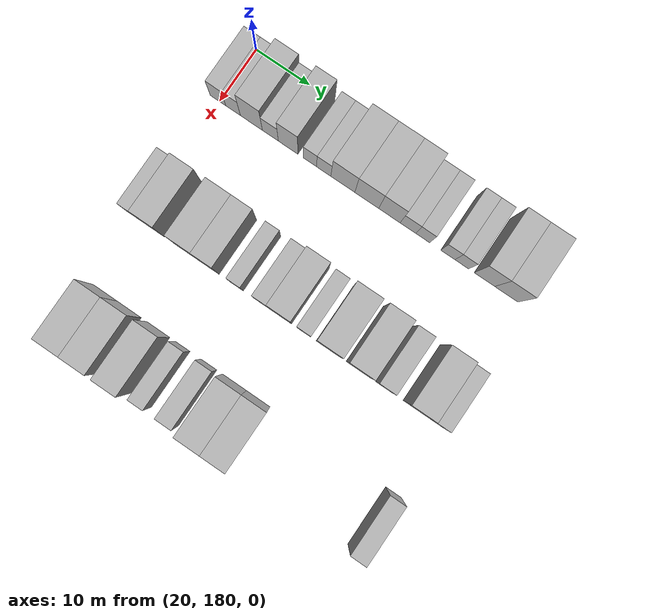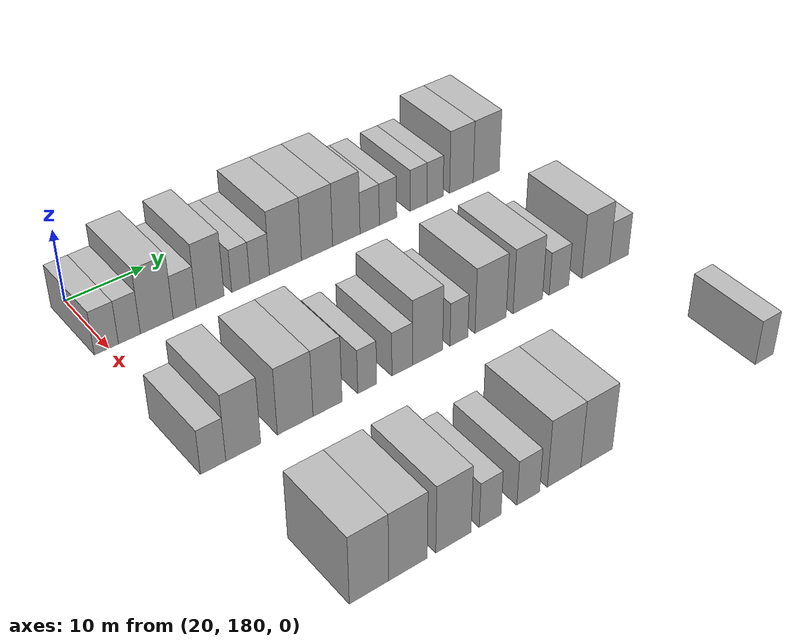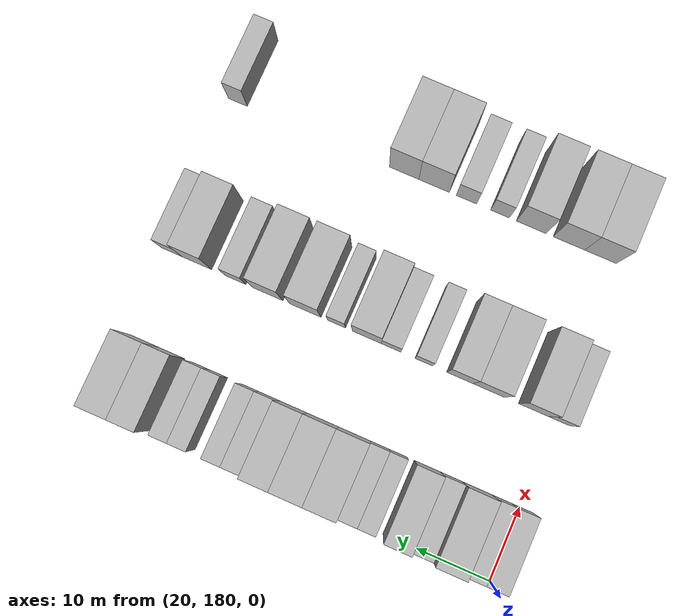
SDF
<sdf version="1.6">
 <world name="default">
  <model name="building_134">
   <static>1</static>
   <pose>25.0000 179.7267 0 0.000000 0.000000 0.000000</pose>
   <link name="link">
    <pose>0 0 3.00 0 0 0</pose>
    <collision name="collision"><geometry><box><size>10.0000 2.9367 6.0000</size></box></geometry></collision>
    <visual name="visual">
     <cast_shadows>0</cast_shadows>
     <geometry><box><size>10.0000 2.9367 6.0000</size></box></geometry>
     <material>
      <script>
       <uri>model://HANNAS_wall/materials/scripts</uri>
       <uri>model://HANNAS_wall/materials/textures</uri>
       <name>vrc/HANNAS_wall</name>
      </script>
     </material>
    </visual>
   </link>
  </model>
  <model name="building_135">
   <static>1</static>
   <pose>25.0000 182.5558 0 0.000000 0.000000 0.000000</pose>
   <link name="link">
    <pose>0 0 3.00 0 0 0</pose>
    <collision name="collision"><geometry><box><size>10.0000 2.7216 6.0000</size></box></geometry></collision>
    <visual name="visual">
     <cast_shadows>0</cast_shadows>
     <geometry><box><size>10.0000 2.7216 6.0000</size></box></geometry>
     <material>
      <script>
       <uri>model://HANNAS_wall/materials/scripts</uri>
       <uri>model://HANNAS_wall/materials/textures</uri>
       <name>vrc/HANNAS_wall</name>
      </script>
     </material>
    </visual>
   </link>
  </model>
  <model name="building_136">
   <static>1</static>
   <pose>25.0000 185.9804 0 0.000000 0.000000 0.000000</pose>
   <link name="link">
    <pose>0 0 4.50 0 0 0</pose>
    <collision name="collision"><geometry><box><size>10.0000 4.1276 9.0000</size></box></geometry></collision>
    <visual name="visual">
     <cast_shadows>0</cast_shadows>
     <geometry><box><size>10.0000 4.1276 9.0000</size></box></geometry>
     <material>
      <script>
       <uri>model://HANNAS_wall/materials/scripts</uri>
       <uri>model://HANNAS_wall/materials/textures</uri>
       <name>vrc/HANNAS_wall</name>
      </script>
     </material>
    </visual>
   </link>
  </model>
  <model name="building_137">
   <static>1</static>
   <pose>25.0000 189.5231 0 0.000000 0.000000 0.000000</pose>
   <link name="link">
    <pose>0 0 3.00 0 0 0</pose>
    <collision name="collision"><geometry><box><size>10.0000 2.9577 6.0000</size></box></geometry></collision>
    <visual name="visual">
     <cast_shadows>0</cast_shadows>
     <geometry><box><size>10.0000 2.9577 6.0000</size></box></geometry>
     <material>
      <script>
       <uri>model://HANNAS_wall/materials/scripts</uri>
       <uri>model://HANNAS_wall/materials/textures</uri>
       <name>vrc/HANNAS_wall</name>
      </script>
     </material>
    </visual>
   </link>
  </model>
  <model name="building_138">
   <static>1</static>
   <pose>25.0000 192.8265 0 0.000000 0.000000 0.000000</pose>
   <link name="link">
    <pose>0 0 4.50 0 0 0</pose>
    <collision name="collision"><geometry><box><size>10.0000 3.6492 9.0000</size></box></geometry></collision>
    <visual name="visual">
     <cast_shadows>0</cast_shadows>
     <geometry><box><size>10.0000 3.6492 9.0000</size></box></geometry>
     <material>
      <script>
       <uri>model://HANNAS_wall/materials/scripts</uri>
       <uri>model://HANNAS_wall/materials/textures</uri>
       <name>vrc/HANNAS_wall</name>
      </script>
     </material>
    </visual>
   </link>
  </model>
  <model name="building_139">
   <static>1</static>
   <pose>25.0000 196.8674 0 0.000000 0.000000 0.000000</pose>
   <link name="link">
    <pose>0 0 3.00 0 0 0</pose>
    <collision name="collision"><geometry><box><size>10.0000 2.4325 6.0000</size></box></geometry></collision>
    <visual name="visual">
     <cast_shadows>0</cast_shadows>
     <geometry><box><size>10.0000 2.4325 6.0000</size></box></geometry>
     <material>
      <script>
       <uri>model://HANNAS_wall/materials/scripts</uri>
       <uri>model://HANNAS_wall/materials/textures</uri>
       <name>vrc/HANNAS_wall</name>
      </script>
     </material>
    </visual>
   </link>
  </model>
  <model name="building_140">
   <static>1</static>
   <pose>25.0000 199.4056 0 0.000000 0.000000 0.000000</pose>
   <link name="link">
    <pose>0 0 3.00 0 0 0</pose>
    <collision name="collision"><geometry><box><size>10.0000 2.6439 6.0000</size></box></geometry></collision>
    <visual name="visual">
     <cast_shadows>0</cast_shadows>
     <geometry><box><size>10.0000 2.6439 6.0000</size></box></geometry>
     <material>
      <script>
       <uri>model://HANNAS_wall/materials/scripts</uri>
       <uri>model://HANNAS_wall/materials/textures</uri>
       <name>vrc/HANNAS_wall</name>
      </script>
     </material>
    </visual>
   </link>
  </model>
  <model name="building_141">
   <static>1</static>
   <pose>25.0000 202.9381 0 0.000000 0.000000 0.000000</pose>
   <link name="link">
    <pose>0 0 4.50 0 0 0</pose>
    <collision name="collision"><geometry><box><size>10.0000 4.4211 9.0000</size></box></geometry></collision>
    <visual name="visual">
     <cast_shadows>0</cast_shadows>
     <geometry><box><size>10.0000 4.4211 9.0000</size></box></geometry>
     <material>
      <script>
       <uri>model://HANNAS_wall/materials/scripts</uri>
       <uri>model://HANNAS_wall/materials/textures</uri>
       <name>vrc/HANNAS_wall</name>
      </script>
     </material>
    </visual>
   </link>
  </model>
  <model name="building_142">
   <static>1</static>
   <pose>25.0000 207.3509 0 0.000000 0.000000 0.000000</pose>
   <link name="link">
    <pose>0 0 4.50 0 0 0</pose>
    <collision name="collision"><geometry><box><size>10.0000 4.4045 9.0000</size></box></geometry></collision>
    <visual name="visual">
     <cast_shadows>0</cast_shadows>
     <geometry><box><size>10.0000 4.4045 9.0000</size></box></geometry>
     <material>
      <script>
       <uri>model://HANNAS_wall/materials/scripts</uri>
       <uri>model://HANNAS_wall/materials/textures</uri>
       <name>vrc/HANNAS_wall</name>
      </script>
     </material>
    </visual>
   </link>
  </model>
  <model name="building_143">
   <static>1</static>
   <pose>25.0000 211.5168 0 0.000000 0.000000 0.000000</pose>
   <link name="link">
    <pose>0 0 4.50 0 0 0</pose>
    <collision name="collision"><geometry><box><size>10.0000 3.9274 9.0000</size></box></geometry></collision>
    <visual name="visual">
     <cast_shadows>0</cast_shadows>
     <geometry><box><size>10.0000 3.9274 9.0000</size></box></geometry>
     <material>
      <script>
       <uri>model://HANNAS_wall/materials/scripts</uri>
       <uri>model://HANNAS_wall/materials/textures</uri>
       <name>vrc/HANNAS_wall</name>
      </script>
     </material>
    </visual>
   </link>
  </model>
  <model name="building_144">
   <static>1</static>
   <pose>25.0000 214.9024 0 0.000000 0.000000 0.000000</pose>
   <link name="link">
    <pose>0 0 3.00 0 0 0</pose>
    <collision name="collision"><geometry><box><size>10.0000 2.8437 6.0000</size></box></geometry></collision>
    <visual name="visual">
     <cast_shadows>0</cast_shadows>
     <geometry><box><size>10.0000 2.8437 6.0000</size></box></geometry>
     <material>
      <script>
       <uri>model://HANNAS_wall/materials/scripts</uri>
       <uri>model://HANNAS_wall/materials/textures</uri>
       <name>vrc/HANNAS_wall</name>
      </script>
     </material>
    </visual>
   </link>
  </model>
  <model name="building_145">
   <static>1</static>
   <pose>25.0000 217.6090 0 0.000000 0.000000 0.000000</pose>
   <link name="link">
    <pose>0 0 3.00 0 0 0</pose>
    <collision name="collision"><geometry><box><size>10.0000 2.5694 6.0000</size></box></geometry></collision>
    <visual name="visual">
     <cast_shadows>0</cast_shadows>
     <geometry><box><size>10.0000 2.5694 6.0000</size></box></geometry>
     <material>
      <script>
       <uri>model://HANNAS_wall/materials/scripts</uri>
       <uri>model://HANNAS_wall/materials/textures</uri>
       <name>vrc/HANNAS_wall</name>
      </script>
     </material>
    </visual>
   </link>
  </model>
  <model name="building_146">
   <static>1</static>
   <pose>25.0000 222.1825 0 0.000000 0.000000 0.000000</pose>
   <link name="link">
    <pose>0 0 3.00 0 0 0</pose>
    <collision name="collision"><geometry><box><size>10.0000 2.5777 6.0000</size></box></geometry></collision>
    <visual name="visual">
     <cast_shadows>0</cast_shadows>
     <geometry><box><size>10.0000 2.5777 6.0000</size></box></geometry>
     <material>
      <script>
       <uri>model://HANNAS_wall/materials/scripts</uri>
       <uri>model://HANNAS_wall/materials/textures</uri>
       <name>vrc/HANNAS_wall</name>
      </script>
     </material>
    </visual>
   </link>
  </model>
  <model name="building_147">
   <static>1</static>
   <pose>25.0000 224.7205 0 0.000000 0.000000 0.000000</pose>
   <link name="link">
    <pose>0 0 3.00 0 0 0</pose>
    <collision name="collision"><geometry><box><size>10.0000 2.4983 6.0000</size></box></geometry></collision>
    <visual name="visual">
     <cast_shadows>0</cast_shadows>
     <geometry><box><size>10.0000 2.4983 6.0000</size></box></geometry>
     <material>
      <script>
       <uri>model://HANNAS_wall/materials/scripts</uri>
       <uri>model://HANNAS_wall/materials/textures</uri>
       <name>vrc/HANNAS_wall</name>
      </script>
     </material>
    </visual>
   </link>
  </model>
  <model name="building_148">
   <static>1</static>
   <pose>25.0000 228.8245 0 0.000000 0.000000 0.000000</pose>
   <link name="link">
    <pose>0 0 4.50 0 0 0</pose>
    <collision name="collision"><geometry><box><size>10.0000 3.7097 9.0000</size></box></geometry></collision>
    <visual name="visual">
     <cast_shadows>0</cast_shadows>
     <geometry><box><size>10.0000 3.7097 9.0000</size></box></geometry>
     <material>
      <script>
       <uri>model://HANNAS_wall/materials/scripts</uri>
       <uri>model://HANNAS_wall/materials/textures</uri>
       <name>vrc/HANNAS_wall</name>
      </script>
     </material>
    </visual>
   </link>
  </model>
  <model name="building_149">
   <static>1</static>
   <pose>25.0000 232.7658 0 0.000000 0.000000 0.000000</pose>
   <link name="link">
    <pose>0 0 4.50 0 0 0</pose>
    <collision name="collision"><geometry><box><size>10.0000 4.1727 9.0000</size></box></geometry></collision>
    <visual name="visual">
     <cast_shadows>0</cast_shadows>
     <geometry><box><size>10.0000 4.1727 9.0000</size></box></geometry>
     <material>
      <script>
       <uri>model://HANNAS_wall/materials/scripts</uri>
       <uri>model://HANNAS_wall/materials/textures</uri>
       <name>vrc/HANNAS_wall</name>
      </script>
     </material>
    </visual>
   </link>
  </model>
  <model name="building_310">
   <static>1</static>
   <pose>47.0000 179.5815 0 0.000000 0.000000 0.000000</pose>
   <link name="link">
    <pose>0 0 3.00 0 0 0</pose>
    <collision name="collision"><geometry><box><size>10.0000 2.9486 6.0000</size></box></geometry></collision>
    <visual name="visual">
     <cast_shadows>0</cast_shadows>
     <geometry><box><size>10.0000 2.9486 6.0000</size></box></geometry>
     <material>
      <script>
       <uri>model://HANNAS_wall/materials/scripts</uri>
       <uri>model://HANNAS_wall/materials/textures</uri>
       <name>vrc/HANNAS_wall</name>
      </script>
     </material>
    </visual>
   </link>
  </model>
  <model name="building_311">
   <static>1</static>
   <pose>47.0000 183.1259 0 0.000000 0.000000 0.000000</pose>
   <link name="link">
    <pose>0 0 4.50 0 0 0</pose>
    <collision name="collision"><geometry><box><size>10.0000 4.1401 9.0000</size></box></geometry></collision>
    <visual name="visual">
     <cast_shadows>0</cast_shadows>
     <geometry><box><size>10.0000 4.1401 9.0000</size></box></geometry>
     <material>
      <script>
       <uri>model://HANNAS_wall/materials/scripts</uri>
       <uri>model://HANNAS_wall/materials/textures</uri>
       <name>vrc/HANNAS_wall</name>
      </script>
     </material>
    </visual>
   </link>
  </model>
  <model name="building_312">
   <static>1</static>
   <pose>47.0000 189.3923 0 0.000000 0.000000 0.000000</pose>
   <link name="link">
    <pose>0 0 4.50 0 0 0</pose>
    <collision name="collision"><geometry><box><size>10.0000 4.3926 9.0000</size></box></geometry></collision>
    <visual name="visual">
     <cast_shadows>0</cast_shadows>
     <geometry><box><size>10.0000 4.3926 9.0000</size></box></geometry>
     <material>
      <script>
       <uri>model://HANNAS_wall/materials/scripts</uri>
       <uri>model://HANNAS_wall/materials/textures</uri>
       <name>vrc/HANNAS_wall</name>
      </script>
     </material>
    </visual>
   </link>
  </model>
  <model name="building_313">
   <static>1</static>
   <pose>47.0000 193.4168 0 0.000000 0.000000 0.000000</pose>
   <link name="link">
    <pose>0 0 4.50 0 0 0</pose>
    <collision name="collision"><geometry><box><size>10.0000 3.6564 9.0000</size></box></geometry></collision>
    <visual name="visual">
     <cast_shadows>0</cast_shadows>
     <geometry><box><size>10.0000 3.6564 9.0000</size></box></geometry>
     <material>
      <script>
       <uri>model://HANNAS_wall/materials/scripts</uri>
       <uri>model://HANNAS_wall/materials/textures</uri>
       <name>vrc/HANNAS_wall</name>
      </script>
     </material>
    </visual>
   </link>
  </model>
  <model name="building_314">
   <static>1</static>
   <pose>47.0000 198.4747 0 0.000000 0.000000 0.000000</pose>
   <link name="link">
    <pose>0 0 3.00 0 0 0</pose>
    <collision name="collision"><geometry><box><size>10.0000 2.4593 6.0000</size></box></geometry></collision>
    <visual name="visual">
     <cast_shadows>0</cast_shadows>
     <geometry><box><size>10.0000 2.4593 6.0000</size></box></geometry>
     <material>
      <script>
       <uri>model://HANNAS_wall/materials/scripts</uri>
       <uri>model://HANNAS_wall/materials/textures</uri>
       <name>vrc/HANNAS_wall</name>
      </script>
     </material>
    </visual>
   </link>
  </model>
  <model name="building_315">
   <static>1</static>
   <pose>47.0000 203.0612 0 0.000000 0.000000 0.000000</pose>
   <link name="link">
    <pose>0 0 3.00 0 0 0</pose>
    <collision name="collision"><geometry><box><size>10.0000 2.7138 6.0000</size></box></geometry></collision>
    <visual name="visual">
     <cast_shadows>0</cast_shadows>
     <geometry><box><size>10.0000 2.7138 6.0000</size></box></geometry>
     <material>
      <script>
       <uri>model://HANNAS_wall/materials/scripts</uri>
       <uri>model://HANNAS_wall/materials/textures</uri>
       <name>vrc/HANNAS_wall</name>
      </script>
     </material>
    </visual>
   </link>
  </model>
  <model name="building_316">
   <static>1</static>
   <pose>47.0000 206.4744 0 0.000000 0.000000 0.000000</pose>
   <link name="link">
    <pose>0 0 4.50 0 0 0</pose>
    <collision name="collision"><geometry><box><size>10.0000 4.1125 9.0000</size></box></geometry></collision>
    <visual name="visual">
     <cast_shadows>0</cast_shadows>
     <geometry><box><size>10.0000 4.1125 9.0000</size></box></geometry>
     <material>
      <script>
       <uri>model://HANNAS_wall/materials/scripts</uri>
       <uri>model://HANNAS_wall/materials/textures</uri>
       <name>vrc/HANNAS_wall</name>
      </script>
     </material>
    </visual>
   </link>
  </model>
  <model name="building_317">
   <static>1</static>
   <pose>47.0000 210.7761 0 0.000000 0.000000 0.000000</pose>
   <link name="link">
    <pose>0 0 3.00 0 0 0</pose>
    <collision name="collision"><geometry><box><size>10.0000 2.4908 6.0000</size></box></geometry></collision>
    <visual name="visual">
     <cast_shadows>0</cast_shadows>
     <geometry><box><size>10.0000 2.4908 6.0000</size></box></geometry>
     <material>
      <script>
       <uri>model://HANNAS_wall/materials/scripts</uri>
       <uri>model://HANNAS_wall/materials/textures</uri>
       <name>vrc/HANNAS_wall</name>
      </script>
     </material>
    </visual>
   </link>
  </model>
  <model name="building_318">
   <static>1</static>
   <pose>47.0000 215.2409 0 0.000000 0.000000 0.000000</pose>
   <link name="link">
    <pose>0 0 4.50 0 0 0</pose>
    <collision name="collision"><geometry><box><size>10.0000 4.4387 9.0000</size></box></geometry></collision>
    <visual name="visual">
     <cast_shadows>0</cast_shadows>
     <geometry><box><size>10.0000 4.4387 9.0000</size></box></geometry>
     <material>
      <script>
       <uri>model://HANNAS_wall/materials/scripts</uri>
       <uri>model://HANNAS_wall/materials/textures</uri>
       <name>vrc/HANNAS_wall</name>
      </script>
     </material>
    </visual>
   </link>
  </model>
  <model name="building_319">
   <static>1</static>
   <pose>47.0000 220.6147 0 0.000000 0.000000 0.000000</pose>
   <link name="link">
    <pose>0 0 4.50 0 0 0</pose>
    <collision name="collision"><geometry><box><size>10.0000 4.3089 9.0000</size></box></geometry></collision>
    <visual name="visual">
     <cast_shadows>0</cast_shadows>
     <geometry><box><size>10.0000 4.3089 9.0000</size></box></geometry>
     <material>
      <script>
       <uri>model://HANNAS_wall/materials/scripts</uri>
       <uri>model://HANNAS_wall/materials/textures</uri>
       <name>vrc/HANNAS_wall</name>
      </script>
     </material>
    </visual>
   </link>
  </model>
  <model name="building_320">
   <static>1</static>
   <pose>47.0000 225.2439 0 0.000000 0.000000 0.000000</pose>
   <link name="link">
    <pose>0 0 3.00 0 0 0</pose>
    <collision name="collision"><geometry><box><size>10.0000 2.9495 6.0000</size></box></geometry></collision>
    <visual name="visual">
     <cast_shadows>0</cast_shadows>
     <geometry><box><size>10.0000 2.9495 6.0000</size></box></geometry>
     <material>
      <script>
       <uri>model://HANNAS_wall/materials/scripts</uri>
       <uri>model://HANNAS_wall/materials/textures</uri>
       <name>vrc/HANNAS_wall</name>
      </script>
     </material>
    </visual>
   </link>
  </model>
  <model name="building_321">
   <static>1</static>
   <pose>47.0000 230.8555 0 0.000000 0.000000 0.000000</pose>
   <link name="link">
    <pose>0 0 4.50 0 0 0</pose>
    <collision name="collision"><geometry><box><size>10.0000 4.2738 9.0000</size></box></geometry></collision>
    <visual name="visual">
     <cast_shadows>0</cast_shadows>
     <geometry><box><size>10.0000 4.2738 9.0000</size></box></geometry>
     <material>
      <script>
       <uri>model://HANNAS_wall/materials/scripts</uri>
       <uri>model://HANNAS_wall/materials/textures</uri>
       <name>vrc/HANNAS_wall</name>
      </script>
     </material>
    </visual>
   </link>
  </model>
  <model name="building_322">
   <static>1</static>
   <pose>47.0000 234.4746 0 0.000000 0.000000 0.000000</pose>
   <link name="link">
    <pose>0 0 3.00 0 0 0</pose>
    <collision name="collision"><geometry><box><size>10.0000 2.9642 6.0000</size></box></geometry></collision>
    <visual name="visual">
     <cast_shadows>0</cast_shadows>
     <geometry><box><size>10.0000 2.9642 6.0000</size></box></geometry>
     <material>
      <script>
       <uri>model://HANNAS_wall/materials/scripts</uri>
       <uri>model://HANNAS_wall/materials/textures</uri>
       <name>vrc/HANNAS_wall</name>
      </script>
     </material>
    </visual>
   </link>
  </model>
  <model name="building_507">
   <static>1</static>
   <pose>69.0000 182.6257 0 0.000000 0.000000 0.000000</pose>
   <link name="link">
    <pose>0 0 4.50 0 0 0</pose>
    <collision name="collision"><geometry><box><size>10.0000 4.4692 9.0000</size></box></geometry></collision>
    <visual name="visual">
     <cast_shadows>0</cast_shadows>
     <geometry><box><size>10.0000 4.4692 9.0000</size></box></geometry>
     <material>
      <script>
       <uri>model://HANNAS_wall/materials/scripts</uri>
       <uri>model://HANNAS_wall/materials/textures</uri>
       <name>vrc/HANNAS_wall</name>
      </script>
     </material>
    </visual>
   </link>
  </model>
  <model name="building_508">
   <static>1</static>
   <pose>69.0000 187.0982 0 0.000000 0.000000 0.000000</pose>
   <link name="link">
    <pose>0 0 4.50 0 0 0</pose>
    <collision name="collision"><geometry><box><size>10.0000 4.4758 9.0000</size></box></geometry></collision>
    <visual name="visual">
     <cast_shadows>0</cast_shadows>
     <geometry><box><size>10.0000 4.4758 9.0000</size></box></geometry>
     <material>
      <script>
       <uri>model://HANNAS_wall/materials/scripts</uri>
       <uri>model://HANNAS_wall/materials/textures</uri>
       <name>vrc/HANNAS_wall</name>
      </script>
     </material>
    </visual>
   </link>
  </model>
  <model name="building_509">
   <static>1</static>
   <pose>69.0000 192.4644 0 0.000000 0.000000 0.000000</pose>
   <link name="link">
    <pose>0 0 4.50 0 0 0</pose>
    <collision name="collision"><geometry><box><size>10.0000 4.2564 9.0000</size></box></geometry></collision>
    <visual name="visual">
     <cast_shadows>0</cast_shadows>
     <geometry><box><size>10.0000 4.2564 9.0000</size></box></geometry>
     <material>
      <script>
       <uri>model://HANNAS_wall/materials/scripts</uri>
       <uri>model://HANNAS_wall/materials/textures</uri>
       <name>vrc/HANNAS_wall</name>
      </script>
     </material>
    </visual>
   </link>
  </model>
  <model name="building_510">
   <static>1</static>
   <pose>69.0000 196.9426 0 0.000000 0.000000 0.000000</pose>
   <link name="link">
    <pose>0 0 3.00 0 0 0</pose>
    <collision name="collision"><geometry><box><size>10.0000 2.7000 6.0000</size></box></geometry></collision>
    <visual name="visual">
     <cast_shadows>0</cast_shadows>
     <geometry><box><size>10.0000 2.7000 6.0000</size></box></geometry>
     <material>
      <script>
       <uri>model://HANNAS_wall/materials/scripts</uri>
       <uri>model://HANNAS_wall/materials/textures</uri>
       <name>vrc/HANNAS_wall</name>
      </script>
     </material>
    </visual>
   </link>
  </model>
  <model name="building_511">
   <static>1</static>
   <pose>69.0000 201.7501 0 0.000000 0.000000 0.000000</pose>
   <link name="link">
    <pose>0 0 3.00 0 0 0</pose>
    <collision name="collision"><geometry><box><size>10.0000 2.9150 6.0000</size></box></geometry></collision>
    <visual name="visual">
     <cast_shadows>0</cast_shadows>
     <geometry><box><size>10.0000 2.9150 6.0000</size></box></geometry>
     <material>
      <script>
       <uri>model://HANNAS_wall/materials/scripts</uri>
       <uri>model://HANNAS_wall/materials/textures</uri>
       <name>vrc/HANNAS_wall</name>
      </script>
     </material>
    </visual>
   </link>
  </model>
  <model name="building_512">
   <static>1</static>
   <pose>69.0000 206.4031 0 0.000000 0.000000 0.000000</pose>
   <link name="link">
    <pose>0 0 4.50 0 0 0</pose>
    <collision name="collision"><geometry><box><size>10.0000 4.3911 9.0000</size></box></geometry></collision>
    <visual name="visual">
     <cast_shadows>0</cast_shadows>
     <geometry><box><size>10.0000 4.3911 9.0000</size></box></geometry>
     <material>
      <script>
       <uri>model://HANNAS_wall/materials/scripts</uri>
       <uri>model://HANNAS_wall/materials/textures</uri>
       <name>vrc/HANNAS_wall</name>
      </script>
     </material>
    </visual>
   </link>
  </model>
  <model name="building_513">
   <static>1</static>
   <pose>69.0000 210.7296 0 0.000000 0.000000 0.000000</pose>
   <link name="link">
    <pose>0 0 4.50 0 0 0</pose>
    <collision name="collision"><geometry><box><size>10.0000 4.2618 9.0000</size></box></geometry></collision>
    <visual name="visual">
     <cast_shadows>0</cast_shadows>
     <geometry><box><size>10.0000 4.2618 9.0000</size></box></geometry>
     <material>
      <script>
       <uri>model://HANNAS_wall/materials/scripts</uri>
       <uri>model://HANNAS_wall/materials/textures</uri>
       <name>vrc/HANNAS_wall</name>
      </script>
     </material>
    </visual>
   </link>
  </model>
  <model name="building_514">
   <static>1</static>
   <pose>69.0000 235.0265 0 0.000000 0.000000 0.000000</pose>
   <link name="link">
    <pose>0 0 3.00 0 0 0</pose>
    <collision name="collision"><geometry><box><size>10.0000 2.7773 6.0000</size></box></geometry></collision>
    <visual name="visual">
     <cast_shadows>0</cast_shadows>
     <geometry><box><size>10.0000 2.7773 6.0000</size></box></geometry>
     <material>
      <script>
       <uri>model://HANNAS_wall/materials/scripts</uri>
       <uri>model://HANNAS_wall/materials/textures</uri>
       <name>vrc/HANNAS_wall</name>
      </script>
     </material>
    </visual>
   </link>
  </model>
 </world>
</sdf>
